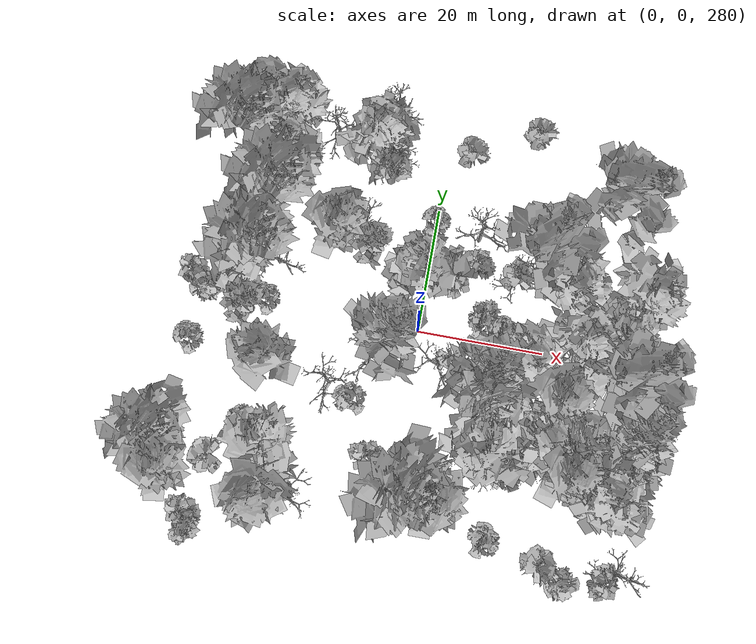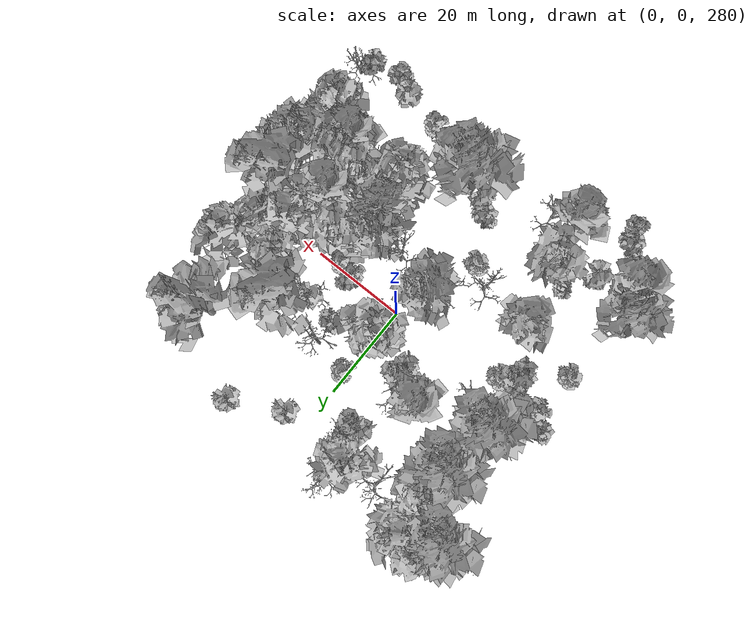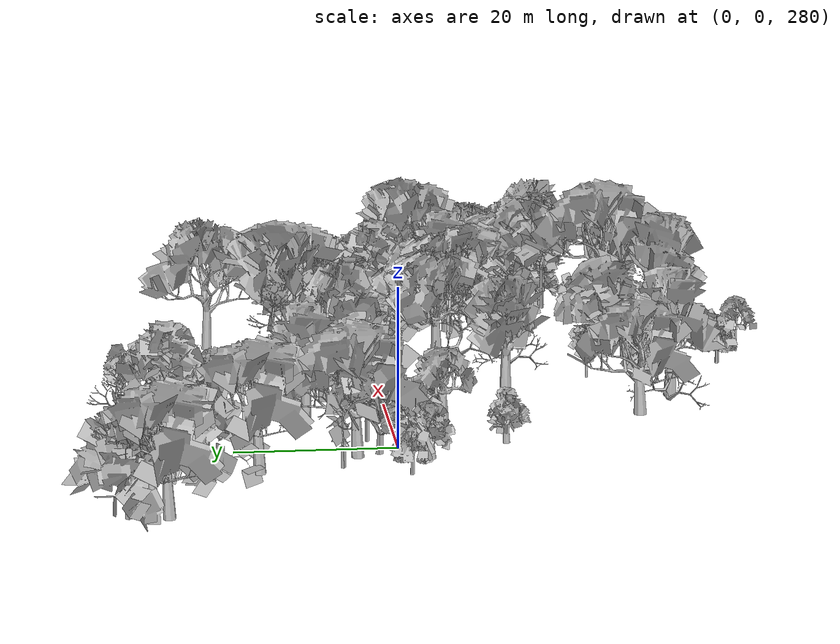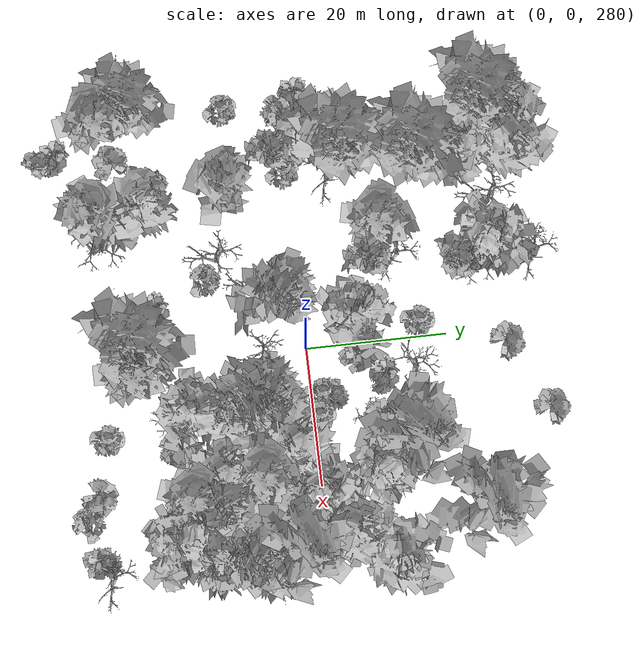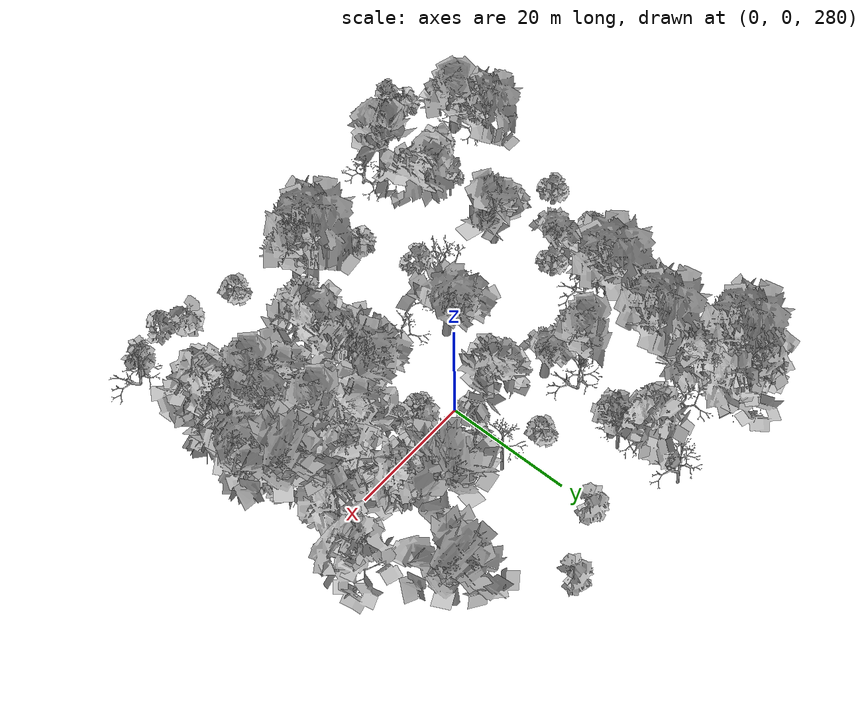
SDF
<sdf version="1.6">
 <world name="default">
  <light name="sun" type="directional">
   <pose>0 0 10 0 -0 0</pose>
   <diffuse>0.8 0.8 0.8 1</diffuse>
   <specular>0.2 0.2 0.2 1</specular>
   <attenuation>
    <range>1000</range>
    <constant>0.9</constant>
    <linear>0.01</linear>
    <quadratic>0.001</quadratic>
   </attenuation>
   <direction>-0.5 0.1 -0.9</direction>
  </light>
  <scene>
   <sky><clouds><speed>12</speed></clouds></sky>
   <ambient>0.4 0.4 0.4 1</ambient>
   <background>0.7 0.7 0.7 1</background>
   <shadows>1</shadows>
  </scene>
  <spherical_coordinates>
   <surface_model>EARTH_WGS84</surface_model>
   <latitude_deg>47.3977</latitude_deg>
   <longitude_deg>8.54559</longitude_deg>
   <elevation>0</elevation>
   <heading_deg>0</heading_deg>
  </spherical_coordinates>
  <physics name="default_physics" default="0" type="ode">
   <ode>
    <solver>
     <type>quick</type>
     <iters>100</iters>
     <sor>1.3</sor>
     <use_dynamic_moi_rescaling>0</use_dynamic_moi_rescaling>
    </solver>
    <constraints>
     <cfm>0</cfm>
     <erp>0.2</erp>
     <contact_max_correcting_vel>100</contact_max_correcting_vel>
     <contact_surface_layer>0.001</contact_surface_layer>
    </constraints>
   </ode>
   <max_step_size>0.002</max_step_size>
   <real_time_factor>1</real_time_factor>
   <real_time_update_rate>500</real_time_update_rate>
  </physics>
  <gravity>0 0 -9.8</gravity>
  <magnetic_field>6e-06 2.3e-05 -4.2e-05</magnetic_field>
  <atmosphere type="adiabatic"/>
  <model name="my_mesh0">
   <pose>20.8063 8.07903 288.471 0 -0 0.445002</pose>
   <static>1</static>
   <link name="body">
    <visual name="visual">
     <geometry><mesh><uri>model://trees/15.dae</uri><scale>1 1 1</scale></mesh></geometry>
    </visual>
    <collision name="collision">
     <geometry><mesh><uri>model://trees/15.dae</uri><scale>1 1 1</scale></mesh></geometry>
    </collision>
   </link>
  </model>
  <model name="my_mesh1">
   <pose>12.1117 -19.312 294.285 0 0 -1.45575</pose>
   <static>1</static>
   <link name="body">
    <visual name="visual">
     <geometry><mesh><uri>model://trees/16.dae</uri><scale>1 1 1</scale></mesh></geometry>
    </visual>
    <collision name="collision">
     <geometry><mesh><uri>model://trees/16.dae</uri><scale>1 1 1</scale></mesh></geometry>
    </collision>
   </link>
  </model>
  <model name="my_mesh2">
   <pose>28.4761 3.03538 289.458 0 0 -0.115288</pose>
   <static>1</static>
   <link name="body">
    <visual name="visual">
     <geometry><mesh><uri>model://trees/12.dae</uri><scale>1 1 1</scale></mesh></geometry>
    </visual>
    <collision name="collision">
     <geometry><mesh><uri>model://trees/12.dae</uri><scale>1 1 1</scale></mesh></geometry>
    </collision>
   </link>
  </model>
  <model name="my_mesh3">
   <pose>18.708 9.09299 288.445 0 0 -1.40842</pose>
   <static>1</static>
   <link name="body">
    <visual name="visual">
     <geometry><mesh><uri>model://trees/2.dae</uri><scale>1 1 1</scale></mesh></geometry>
    </visual>
    <collision name="collision">
     <geometry><mesh><uri>model://trees/2.dae</uri><scale>1 1 1</scale></mesh></geometry>
    </collision>
   </link>
  </model>
  <model name="my_mesh4">
   <pose>9.41999 1.23838 289.77 0 0 -0.620555</pose>
   <static>1</static>
   <link name="body">
    <visual name="visual">
     <geometry><mesh><uri>model://trees/1.dae</uri><scale>1 1 1</scale></mesh></geometry>
    </visual>
    <collision name="collision">
     <geometry><mesh><uri>model://trees/1.dae</uri><scale>1 1 1</scale></mesh></geometry>
    </collision>
   </link>
  </model>
  <model name="my_mesh5">
   <pose>21.1443 -7.71725 291.224 0 0 -0.550652</pose>
   <static>1</static>
   <link name="body">
    <visual name="visual">
     <geometry><mesh><uri>model://trees/11.dae</uri><scale>1 1 1</scale></mesh></geometry>
    </visual>
    <collision name="collision">
     <geometry><mesh><uri>model://trees/11.dae</uri><scale>1 1 1</scale></mesh></geometry>
    </collision>
   </link>
  </model>
  <model name="my_mesh6">
   <pose>24.3516 1.00171 289.25 0 0 -1.35524</pose>
   <static>1</static>
   <link name="body">
    <visual name="visual">
     <geometry><mesh><uri>model://trees/15.dae</uri><scale>1 1 1</scale></mesh></geometry>
    </visual>
    <collision name="collision">
     <geometry><mesh><uri>model://trees/15.dae</uri><scale>1 1 1</scale></mesh></geometry>
    </collision>
   </link>
  </model>
  <model name="my_mesh7">
   <pose>30.9174 -14.6529 292.255 0 0 -1.44857</pose>
   <static>1</static>
   <link name="body">
    <visual name="visual">
     <geometry><mesh><uri>model://trees/1.dae</uri><scale>1 1 1</scale></mesh></geometry>
    </visual>
    <collision name="collision">
     <geometry><mesh><uri>model://trees/1.dae</uri><scale>1 1 1</scale></mesh></geometry>
    </collision>
   </link>
  </model>
  <model name="my_mesh8">
   <pose>32.6044 -30.0269 295.696 0 -0 1.37996</pose>
   <static>1</static>
   <link name="body">
    <visual name="visual">
     <geometry><mesh><uri>model://trees/18.dae</uri><scale>1 1 1</scale></mesh></geometry>
    </visual>
    <collision name="collision">
     <geometry><mesh><uri>model://trees/18.dae</uri><scale>1 1 1</scale></mesh></geometry>
    </collision>
   </link>
  </model>
  <model name="my_mesh9">
   <pose>29.5746 5.54922 288.974 0 0 -1.54508</pose>
   <static>1</static>
   <link name="body">
    <visual name="visual">
     <geometry><mesh><uri>model://trees/0.dae</uri><scale>1 1 1</scale></mesh></geometry>
    </visual>
    <collision name="collision">
     <geometry><mesh><uri>model://trees/0.dae</uri><scale>1 1 1</scale></mesh></geometry>
    </collision>
   </link>
  </model>
  <model name="my_mesh10">
   <pose>12.5589 0.535998 289.757 0 0 -0.53211</pose>
   <static>1</static>
   <link name="body">
    <visual name="visual">
     <geometry><mesh><uri>model://trees/1.dae</uri><scale>1 1 1</scale></mesh></geometry>
    </visual>
    <collision name="collision">
     <geometry><mesh><uri>model://trees/1.dae</uri><scale>1 1 1</scale></mesh></geometry>
    </collision>
   </link>
  </model>
  <model name="my_mesh11">
   <pose>33.2241 -8.57934 291.117 0 0 -0.520191</pose>
   <static>1</static>
   <link name="body">
    <visual name="visual">
     <geometry><mesh><uri>model://trees/13.dae</uri><scale>1 1 1</scale></mesh></geometry>
    </visual>
    <collision name="collision">
     <geometry><mesh><uri>model://trees/13.dae</uri><scale>1 1 1</scale></mesh></geometry>
    </collision>
   </link>
  </model>
  <model name="my_mesh12">
   <pose>21.7997 -30.909 295.75 0 0 -1.52255</pose>
   <static>1</static>
   <link name="body">
    <visual name="visual">
     <geometry><mesh><uri>model://trees/5.dae</uri><scale>1 1 1</scale></mesh></geometry>
    </visual>
    <collision name="collision">
     <geometry><mesh><uri>model://trees/5.dae</uri><scale>1 1 1</scale></mesh></geometry>
    </collision>
   </link>
  </model>
  <model name="my_mesh13">
   <pose>31.8118 -14.5154 292.009 0 0 -1.19133</pose>
   <static>1</static>
   <link name="body">
    <visual name="visual">
     <geometry><mesh><uri>model://trees/13.dae</uri><scale>1 1 1</scale></mesh></geometry>
    </visual>
    <collision name="collision">
     <geometry><mesh><uri>model://trees/13.dae</uri><scale>1 1 1</scale></mesh></geometry>
    </collision>
   </link>
  </model>
  <model name="my_mesh14">
   <pose>16.1017 -4.00409 290.698 0 -0 0.822616</pose>
   <static>1</static>
   <link name="body">
    <visual name="visual">
     <geometry><mesh><uri>model://trees/12.dae</uri><scale>1 1 1</scale></mesh></geometry>
    </visual>
    <collision name="collision">
     <geometry><mesh><uri>model://trees/12.dae</uri><scale>1 1 1</scale></mesh></geometry>
    </collision>
   </link>
  </model>
  <model name="my_mesh15">
   <pose>31.5274 -8.66621 291.149 0 -0 0.917656</pose>
   <static>1</static>
   <link name="body">
    <visual name="visual">
     <geometry><mesh><uri>model://trees/7.dae</uri><scale>1 1 1</scale></mesh></geometry>
    </visual>
    <collision name="collision">
     <geometry><mesh><uri>model://trees/7.dae</uri><scale>1 1 1</scale></mesh></geometry>
    </collision>
   </link>
  </model>
  <model name="my_mesh16">
   <pose>15.7904 -10.4814 291.89 0 0 -1.28272</pose>
   <static>1</static>
   <link name="body">
    <visual name="visual">
     <geometry><mesh><uri>model://trees/19.dae</uri><scale>1 1 1</scale></mesh></geometry>
    </visual>
    <collision name="collision">
     <geometry><mesh><uri>model://trees/19.dae</uri><scale>1 1 1</scale></mesh></geometry>
    </collision>
   </link>
  </model>
  <model name="my_mesh17">
   <pose>-0.894987 -23.3352 296.823 0 -0 1.03166</pose>
   <static>1</static>
   <link name="body">
    <visual name="visual">
     <geometry><mesh><uri>model://trees/5.dae</uri><scale>1 1 1</scale></mesh></geometry>
    </visual>
    <collision name="collision">
     <geometry><mesh><uri>model://trees/5.dae</uri><scale>1 1 1</scale></mesh></geometry>
    </collision>
   </link>
  </model>
  <model name="my_mesh18">
   <pose>27.3117 -22.5075 293.805 0 -0 0.249165</pose>
   <static>1</static>
   <link name="body">
    <visual name="visual">
     <geometry><mesh><uri>model://trees/2.dae</uri><scale>1 1 1</scale></mesh></geometry>
    </visual>
    <collision name="collision">
     <geometry><mesh><uri>model://trees/2.dae</uri><scale>1 1 1</scale></mesh></geometry>
    </collision>
   </link>
  </model>
  <model name="my_mesh19">
   <pose>24.5126 -14.8817 291.827 0 -0 0.475375</pose>
   <static>1</static>
   <link name="body">
    <visual name="visual">
     <geometry><mesh><uri>model://trees/8.dae</uri><scale>1 1 1</scale></mesh></geometry>
    </visual>
    <collision name="collision">
     <geometry><mesh><uri>model://trees/8.dae</uri><scale>1 1 1</scale></mesh></geometry>
    </collision>
   </link>
  </model>
  <model name="my_mesh20">
   <pose>31.001 -6.72934 290.999 0 -0 1.10973</pose>
   <static>1</static>
   <link name="body">
    <visual name="visual">
     <geometry><mesh><uri>model://trees/3.dae</uri><scale>1 1 1</scale></mesh></geometry>
    </visual>
    <collision name="collision">
     <geometry><mesh><uri>model://trees/3.dae</uri><scale>1 1 1</scale></mesh></geometry>
    </collision>
   </link>
  </model>
  <model name="my_mesh21">
   <pose>14.0333 -29.0196 296.132 0 0 -0.725144</pose>
   <static>1</static>
   <link name="body">
    <visual name="visual">
     <geometry><mesh><uri>model://trees/1.dae</uri><scale>1 1 1</scale></mesh></geometry>
    </visual>
    <collision name="collision">
     <geometry><mesh><uri>model://trees/1.dae</uri><scale>1 1 1</scale></mesh></geometry>
    </collision>
   </link>
  </model>
  <model name="my_mesh22">
   <pose>17.6701 -16.9803 293.088 0 0 -1.39473</pose>
   <static>1</static>
   <link name="body">
    <visual name="visual">
     <geometry><mesh><uri>model://trees/2.dae</uri><scale>1 1 1</scale></mesh></geometry>
    </visual>
    <collision name="collision">
     <geometry><mesh><uri>model://trees/2.dae</uri><scale>1 1 1</scale></mesh></geometry>
    </collision>
   </link>
  </model>
  <model name="my_mesh23">
   <pose>25.1874 -6.09612 290.47 0 0 -0.320459</pose>
   <static>1</static>
   <link name="body">
    <visual name="visual">
     <geometry><mesh><uri>model://trees/6.dae</uri><scale>1 1 1</scale></mesh></geometry>
    </visual>
    <collision name="collision">
     <geometry><mesh><uri>model://trees/6.dae</uri><scale>1 1 1</scale></mesh></geometry>
    </collision>
   </link>
  </model>
  <model name="my_mesh24">
   <pose>10.8389 -10.3222 292.921 0 0 -1.09344</pose>
   <static>1</static>
   <link name="body">
    <visual name="visual">
     <geometry><mesh><uri>model://trees/8.dae</uri><scale>1 1 1</scale></mesh></geometry>
    </visual>
    <collision name="collision">
     <geometry><mesh><uri>model://trees/8.dae</uri><scale>1 1 1</scale></mesh></geometry>
    </collision>
   </link>
  </model>
  <model name="my_mesh25">
   <pose>16.0202 -19.8481 293.751 0 0 -1.15981</pose>
   <static>1</static>
   <link name="body">
    <visual name="visual">
     <geometry><mesh><uri>model://trees/0.dae</uri><scale>1 1 1</scale></mesh></geometry>
    </visual>
    <collision name="collision">
     <geometry><mesh><uri>model://trees/0.dae</uri><scale>1 1 1</scale></mesh></geometry>
    </collision>
   </link>
  </model>
  <model name="my_mesh26">
   <pose>32.3918 -9.22282 291.255 0 -0 0.407303</pose>
   <static>1</static>
   <link name="body">
    <visual name="visual">
     <geometry><mesh><uri>model://trees/6.dae</uri><scale>1 1 1</scale></mesh></geometry>
    </visual>
    <collision name="collision">
     <geometry><mesh><uri>model://trees/6.dae</uri><scale>1 1 1</scale></mesh></geometry>
    </collision>
   </link>
  </model>
  <model name="my_mesh27">
   <pose>28.3484 -19.161 293.142 0 0 -1.47955</pose>
   <static>1</static>
   <link name="body">
    <visual name="visual">
     <geometry><mesh><uri>model://trees/8.dae</uri><scale>1 1 1</scale></mesh></geometry>
    </visual>
    <collision name="collision">
     <geometry><mesh><uri>model://trees/8.dae</uri><scale>1 1 1</scale></mesh></geometry>
    </collision>
   </link>
  </model>
  <model name="my_mesh28">
   <pose>25.1324 -32.8108 295.833 0 -0 1.37274</pose>
   <static>1</static>
   <link name="body">
    <visual name="visual">
     <geometry><mesh><uri>model://trees/0.dae</uri><scale>1 1 1</scale></mesh></geometry>
    </visual>
    <collision name="collision">
     <geometry><mesh><uri>model://trees/0.dae</uri><scale>1 1 1</scale></mesh></geometry>
    </collision>
   </link>
  </model>
  <model name="my_mesh29">
   <pose>31.3949 -4.27127 290.542 0 -0 0.686679</pose>
   <static>1</static>
   <link name="body">
    <visual name="visual">
     <geometry><mesh><uri>model://trees/10.dae</uri><scale>1 1 1</scale></mesh></geometry>
    </visual>
    <collision name="collision">
     <geometry><mesh><uri>model://trees/10.dae</uri><scale>1 1 1</scale></mesh></geometry>
    </collision>
   </link>
  </model>
  <model name="my_mesh30">
   <pose>33.2624 -11.6238 291.68 0 -0 0.913694</pose>
   <static>1</static>
   <link name="body">
    <visual name="visual">
     <geometry><mesh><uri>model://trees/8.dae</uri><scale>1 1 1</scale></mesh></geometry>
    </visual>
    <collision name="collision">
     <geometry><mesh><uri>model://trees/8.dae</uri><scale>1 1 1</scale></mesh></geometry>
    </collision>
   </link>
  </model>
  <model name="my_mesh31">
   <pose>-5.83259 -6.56922 293.065 0 0 -0.260248</pose>
   <static>1</static>
   <link name="body">
    <visual name="visual">
     <geometry><mesh><uri>model://trees/19.dae</uri><scale>1 1 1</scale></mesh></geometry>
    </visual>
    <collision name="collision">
     <geometry><mesh><uri>model://trees/19.dae</uri><scale>1 1 1</scale></mesh></geometry>
    </collision>
   </link>
  </model>
  <model name="my_mesh32">
   <pose>26.7089 -2.7614 290.294 0 -0 1.30739</pose>
   <static>1</static>
   <link name="body">
    <visual name="visual">
     <geometry><mesh><uri>model://trees/13.dae</uri><scale>1 1 1</scale></mesh></geometry>
    </visual>
    <collision name="collision">
     <geometry><mesh><uri>model://trees/13.dae</uri><scale>1 1 1</scale></mesh></geometry>
    </collision>
   </link>
  </model>
  <model name="my_mesh33">
   <pose>-32.5218 27.4969 282.625 0 0 -0.562097</pose>
   <static>1</static>
   <link name="body">
    <visual name="visual">
     <geometry><mesh><uri>model://trees/9.dae</uri><scale>1 1 1</scale></mesh></geometry>
    </visual>
    <collision name="collision">
     <geometry><mesh><uri>model://trees/9.dae</uri><scale>1 1 1</scale></mesh></geometry>
    </collision>
   </link>
  </model>
  <model name="my_mesh34">
   <pose>-24.8462 23.2175 284.416 0 -0 1.04685</pose>
   <static>1</static>
   <link name="body">
    <visual name="visual">
     <geometry><mesh><uri>model://trees/12.dae</uri><scale>1 1 1</scale></mesh></geometry>
    </visual>
    <collision name="collision">
     <geometry><mesh><uri>model://trees/12.dae</uri><scale>1 1 1</scale></mesh></geometry>
    </collision>
   </link>
  </model>
  <model name="my_mesh35">
   <pose>13.6358 33.2331 284.376 0 -0 0.008972</pose>
   <static>1</static>
   <link name="body">
    <visual name="visual">
     <geometry><mesh><uri>model://trees/5.dae</uri><scale>1 1 1</scale></mesh></geometry>
    </visual>
    <collision name="collision">
     <geometry><mesh><uri>model://trees/5.dae</uri><scale>1 1 1</scale></mesh></geometry>
    </collision>
   </link>
  </model>
  <model name="my_mesh36">
   <pose>-28.7734 2.34885 288.024 0 -0 0.194529</pose>
   <static>1</static>
   <link name="body">
    <visual name="visual">
     <geometry><mesh><uri>model://trees/6.dae</uri><scale>1 1 1</scale></mesh></geometry>
    </visual>
    <collision name="collision">
     <geometry><mesh><uri>model://trees/6.dae</uri><scale>1 1 1</scale></mesh></geometry>
    </collision>
   </link>
  </model>
  <model name="my_mesh37">
   <pose>-31.0786 -26.2478 294.34 0 0 -0.03751</pose>
   <static>1</static>
   <link name="body">
    <visual name="visual">
     <geometry><mesh><uri>model://trees/11.dae</uri><scale>1 1 1</scale></mesh></geometry>
    </visual>
    <collision name="collision">
     <geometry><mesh><uri>model://trees/11.dae</uri><scale>1 1 1</scale></mesh></geometry>
    </collision>
   </link>
  </model>
  <model name="my_mesh38">
   <pose>-27.2691 4.75439 287.556 0 0 -0.150615</pose>
   <static>1</static>
   <link name="body">
    <visual name="visual">
     <geometry><mesh><uri>model://trees/13.dae</uri><scale>1 1 1</scale></mesh></geometry>
    </visual>
    <collision name="collision">
     <geometry><mesh><uri>model://trees/13.dae</uri><scale>1 1 1</scale></mesh></geometry>
    </collision>
   </link>
  </model>
  <model name="my_mesh39">
   <pose>-28.7709 8.77153 286.57 0 0 -1.45573</pose>
   <static>1</static>
   <link name="body">
    <visual name="visual">
     <geometry><mesh><uri>model://trees/16.dae</uri><scale>1 1 1</scale></mesh></geometry>
    </visual>
    <collision name="collision">
     <geometry><mesh><uri>model://trees/16.dae</uri><scale>1 1 1</scale></mesh></geometry>
    </collision>
   </link>
  </model>
  <model name="my_mesh40">
   <pose>-8.66043 9.53047 288.665 0 -0 0.646439</pose>
   <static>1</static>
   <link name="body">
    <visual name="visual">
     <geometry><mesh><uri>model://trees/7.dae</uri><scale>1 1 1</scale></mesh></geometry>
    </visual>
    <collision name="collision">
     <geometry><mesh><uri>model://trees/7.dae</uri><scale>1 1 1</scale></mesh></geometry>
    </collision>
   </link>
  </model>
  <model name="my_mesh41">
   <pose>-30.9881 31.8288 282.295 0 0 -1.48958</pose>
   <static>1</static>
   <link name="body">
    <visual name="visual">
     <geometry><mesh><uri>model://trees/13.dae</uri><scale>1 1 1</scale></mesh></geometry>
    </visual>
    <collision name="collision">
     <geometry><mesh><uri>model://trees/13.dae</uri><scale>1 1 1</scale></mesh></geometry>
    </collision>
   </link>
  </model>
  <model name="my_mesh42">
   <pose>-11.0858 -11.4559 293.104 0 0 -0.016769</pose>
   <static>1</static>
   <link name="body">
    <visual name="visual">
     <geometry><mesh><uri>model://trees/18.dae</uri><scale>1 1 1</scale></mesh></geometry>
    </visual>
    <collision name="collision">
     <geometry><mesh><uri>model://trees/18.dae</uri><scale>1 1 1</scale></mesh></geometry>
    </collision>
   </link>
  </model>
  <model name="my_mesh43">
   <pose>-10.7099 28.1124 284.486 0 0 -0.870695</pose>
   <static>1</static>
   <link name="body">
    <visual name="visual">
     <geometry><mesh><uri>model://trees/15.dae</uri><scale>1 1 1</scale></mesh></geometry>
    </visual>
    <collision name="collision">
     <geometry><mesh><uri>model://trees/15.dae</uri><scale>1 1 1</scale></mesh></geometry>
    </collision>
   </link>
  </model>
  <model name="my_mesh44">
   <pose>-25.2558 -2.4824 289.43 0 -0 0.560252</pose>
   <static>1</static>
   <link name="body">
    <visual name="visual">
     <geometry><mesh><uri>model://trees/7.dae</uri><scale>1 1 1</scale></mesh></geometry>
    </visual>
    <collision name="collision">
     <geometry><mesh><uri>model://trees/7.dae</uri><scale>1 1 1</scale></mesh></geometry>
    </collision>
   </link>
  </model>
  <model name="my_mesh45">
   <pose>-31.829 -25.9019 294.183 0 0 -0.592964</pose>
   <static>1</static>
   <link name="body">
    <visual name="visual">
     <geometry><mesh><uri>model://trees/18.dae</uri><scale>1 1 1</scale></mesh></geometry>
    </visual>
    <collision name="collision">
     <geometry><mesh><uri>model://trees/18.dae</uri><scale>1 1 1</scale></mesh></geometry>
    </collision>
   </link>
  </model>
  <model name="my_mesh46">
   <pose>-3.21603 -4.20344 292.46 0 -0 0.943729</pose>
   <static>1</static>
   <link name="body">
    <visual name="visual">
     <geometry><mesh><uri>model://trees/8.dae</uri><scale>1 1 1</scale></mesh></geometry>
    </visual>
    <collision name="collision">
     <geometry><mesh><uri>model://trees/8.dae</uri><scale>1 1 1</scale></mesh></geometry>
    </collision>
   </link>
  </model>
  <model name="my_mesh47">
   <pose>-8.35732 22.1031 285.704 0 0 -0.474752</pose>
   <static>1</static>
   <link name="body">
    <visual name="visual">
     <geometry><mesh><uri>model://trees/7.dae</uri><scale>1 1 1</scale></mesh></geometry>
    </visual>
    <collision name="collision">
     <geometry><mesh><uri>model://trees/7.dae</uri><scale>1 1 1</scale></mesh></geometry>
    </collision>
   </link>
  </model>
  <model name="my_mesh48">
   <pose>-17.4207 27.9137 284.295 0 0 -0.046152</pose>
   <static>1</static>
   <link name="body">
    <visual name="visual">
     <geometry><mesh><uri>model://trees/17.dae</uri><scale>1 1 1</scale></mesh></geometry>
    </visual>
    <collision name="collision">
     <geometry><mesh><uri>model://trees/17.dae</uri><scale>1 1 1</scale></mesh></geometry>
    </collision>
   </link>
  </model>
  <model name="my_mesh49">
   <pose>17.2876 12.7668 287.847 0 -0 1.20002</pose>
   <static>1</static>
   <link name="body">
    <visual name="visual">
     <geometry><mesh><uri>model://trees/10.dae</uri><scale>1 1 1</scale></mesh></geometry>
    </visual>
    <collision name="collision">
     <geometry><mesh><uri>model://trees/10.dae</uri><scale>1 1 1</scale></mesh></geometry>
    </collision>
   </link>
  </model>
  <model name="my_mesh50">
   <pose>-32.0704 -0.500768 288.326 0 0 -1.50393</pose>
   <static>1</static>
   <link name="body">
    <visual name="visual">
     <geometry><mesh><uri>model://trees/0.dae</uri><scale>1 1 1</scale></mesh></geometry>
    </visual>
    <collision name="collision">
     <geometry><mesh><uri>model://trees/0.dae</uri><scale>1 1 1</scale></mesh></geometry>
    </collision>
   </link>
  </model>
  <model name="my_mesh51">
   <pose>-26.7556 -32.3917 296.7 0 0 -0.833346</pose>
   <static>1</static>
   <link name="body">
    <visual name="visual">
     <geometry><mesh><uri>model://trees/4.dae</uri><scale>1 1 1</scale></mesh></geometry>
    </visual>
    <collision name="collision">
     <geometry><mesh><uri>model://trees/4.dae</uri><scale>1 1 1</scale></mesh></geometry>
    </collision>
   </link>
  </model>
  <model name="my_mesh52">
   <pose>-34.6529 1.91265 287.442 0 0 -1.035</pose>
   <static>1</static>
   <link name="body">
    <visual name="visual">
     <geometry><mesh><uri>model://trees/4.dae</uri><scale>1 1 1</scale></mesh></geometry>
    </visual>
    <collision name="collision">
     <geometry><mesh><uri>model://trees/4.dae</uri><scale>1 1 1</scale></mesh></geometry>
    </collision>
   </link>
  </model>
  <model name="my_mesh53">
   <pose>-30.7135 29.1881 282.845 0 0 -0.298796</pose>
   <static>1</static>
   <link name="body">
    <visual name="visual">
     <geometry><mesh><uri>model://trees/8.dae</uri><scale>1 1 1</scale></mesh></geometry>
    </visual>
    <collision name="collision">
     <geometry><mesh><uri>model://trees/8.dae</uri><scale>1 1 1</scale></mesh></geometry>
    </collision>
   </link>
  </model>
  <model name="my_mesh54">
   <pose>19.7701 -14.6795 292.562 0 -0 0.757205</pose>
   <static>1</static>
   <link name="body">
    <visual name="visual">
     <geometry><mesh><uri>model://trees/12.dae</uri><scale>1 1 1</scale></mesh></geometry>
    </visual>
    <collision name="collision">
     <geometry><mesh><uri>model://trees/12.dae</uri><scale>1 1 1</scale></mesh></geometry>
    </collision>
   </link>
  </model>
  <model name="my_mesh55">
   <pose>-9.27438 33.6008 283.584 0 -0 1.2289</pose>
   <static>1</static>
   <link name="body">
    <visual name="visual">
     <geometry><mesh><uri>model://trees/17.dae</uri><scale>1 1 1</scale></mesh></geometry>
    </visual>
    <collision name="collision">
     <geometry><mesh><uri>model://trees/17.dae</uri><scale>1 1 1</scale></mesh></geometry>
    </collision>
   </link>
  </model>
  <model name="my_mesh56">
   <pose>-26.6286 7.04772 287.062 0 0 -0.130337</pose>
   <static>1</static>
   <link name="body">
    <visual name="visual">
     <geometry><mesh><uri>model://trees/9.dae</uri><scale>1 1 1</scale></mesh></geometry>
    </visual>
    <collision name="collision">
     <geometry><mesh><uri>model://trees/9.dae</uri><scale>1 1 1</scale></mesh></geometry>
    </collision>
   </link>
  </model>
  <model name="my_mesh57">
   <pose>-3.64703 4.93612 289.512 0 0 -0.008549</pose>
   <static>1</static>
   <link name="body">
    <visual name="visual">
     <geometry><mesh><uri>model://trees/2.dae</uri><scale>1 1 1</scale></mesh></geometry>
    </visual>
    <collision name="collision">
     <geometry><mesh><uri>model://trees/2.dae</uri><scale>1 1 1</scale></mesh></geometry>
    </collision>
   </link>
  </model>
  <model name="my_mesh58">
   <pose>23.6816 -17.6831 292.428 0 0 -0.543715</pose>
   <static>1</static>
   <link name="body">
    <visual name="visual">
     <geometry><mesh><uri>model://trees/11.dae</uri><scale>1 1 1</scale></mesh></geometry>
    </visual>
    <collision name="collision">
     <geometry><mesh><uri>model://trees/11.dae</uri><scale>1 1 1</scale></mesh></geometry>
    </collision>
   </link>
  </model>
  <model name="my_mesh59">
   <pose>3.64033 28.1074 284.727 0 0 -0.371813</pose>
   <static>1</static>
   <link name="body">
    <visual name="visual">
     <geometry><mesh><uri>model://trees/5.dae</uri><scale>1 1 1</scale></mesh></geometry>
    </visual>
    <collision name="collision">
     <geometry><mesh><uri>model://trees/5.dae</uri><scale>1 1 1</scale></mesh></geometry>
    </collision>
   </link>
  </model>
  <model name="my_mesh60">
   <pose>-25.4764 17.6667 285.158 0 0 -0.587343</pose>
   <static>1</static>
   <link name="body">
    <visual name="visual">
     <geometry><mesh><uri>model://trees/9.dae</uri><scale>1 1 1</scale></mesh></geometry>
    </visual>
    <collision name="collision">
     <geometry><mesh><uri>model://trees/9.dae</uri><scale>1 1 1</scale></mesh></geometry>
    </collision>
   </link>
  </model>
  <model name="my_mesh61">
   <pose>-10.6518 14.1713 287.423 0 -0 1.00379</pose>
   <static>1</static>
   <link name="body">
    <visual name="visual">
     <geometry><mesh><uri>model://trees/18.dae</uri><scale>1 1 1</scale></mesh></geometry>
    </visual>
    <collision name="collision">
     <geometry><mesh><uri>model://trees/18.dae</uri><scale>1 1 1</scale></mesh></geometry>
    </collision>
   </link>
  </model>
  <model name="my_mesh62">
   <pose>-25.9468 31.5745 282.911 0 0 -0.654048</pose>
   <static>1</static>
   <link name="body">
    <visual name="visual">
     <geometry><mesh><uri>model://trees/12.dae</uri><scale>1 1 1</scale></mesh></geometry>
    </visual>
    <collision name="collision">
     <geometry><mesh><uri>model://trees/12.dae</uri><scale>1 1 1</scale></mesh></geometry>
    </collision>
   </link>
  </model>
  <model name="my_mesh63">
   <pose>-30.8552 -0.063687 288.267 0 -0 1.07412</pose>
   <static>1</static>
   <link name="body">
    <visual name="visual">
     <geometry><mesh><uri>model://trees/0.dae</uri><scale>1 1 1</scale></mesh></geometry>
    </visual>
    <collision name="collision">
     <geometry><mesh><uri>model://trees/0.dae</uri><scale>1 1 1</scale></mesh></geometry>
    </collision>
   </link>
  </model>
  <model name="my_mesh64">
   <pose>-20.7551 -9.94239 291.533 0 -0 1.16153</pose>
   <static>1</static>
   <link name="body">
    <visual name="visual">
     <geometry><mesh><uri>model://trees/11.dae</uri><scale>1 1 1</scale></mesh></geometry>
    </visual>
    <collision name="collision">
     <geometry><mesh><uri>model://trees/11.dae</uri><scale>1 1 1</scale></mesh></geometry>
    </collision>
   </link>
  </model>
  <model name="my_mesh65">
   <pose>-25.4256 -24.6074 294.937 0 -0 0.953819</pose>
   <static>1</static>
   <link name="body">
    <visual name="visual">
     <geometry><mesh><uri>model://trees/5.dae</uri><scale>1 1 1</scale></mesh></geometry>
    </visual>
    <collision name="collision">
     <geometry><mesh><uri>model://trees/5.dae</uri><scale>1 1 1</scale></mesh></geometry>
    </collision>
   </link>
  </model>
  <model name="my_mesh66">
   <pose>12.2202 -17.0107 293.862 0 -0 0.589776</pose>
   <static>1</static>
   <link name="body">
    <visual name="visual">
     <geometry><mesh><uri>model://trees/14.dae</uri><scale>1 1 1</scale></mesh></geometry>
    </visual>
    <collision name="collision">
     <geometry><mesh><uri>model://trees/14.dae</uri><scale>1 1 1</scale></mesh></geometry>
    </collision>
   </link>
  </model>
  <model name="my_mesh67">
   <pose>-21.5446 -18.9208 294.035 0 -0 1.50483</pose>
   <static>1</static>
   <link name="body">
    <visual name="visual">
     <geometry><mesh><uri>model://trees/6.dae</uri><scale>1 1 1</scale></mesh></geometry>
    </visual>
    <collision name="collision">
     <geometry><mesh><uri>model://trees/6.dae</uri><scale>1 1 1</scale></mesh></geometry>
    </collision>
   </link>
  </model>
  <model name="my_mesh68">
   <pose>5.90744 -24.4115 296.689 0 0 -0.204642</pose>
   <static>1</static>
   <link name="body">
    <visual name="visual">
     <geometry><mesh><uri>model://trees/11.dae</uri><scale>1 1 1</scale></mesh></geometry>
    </visual>
    <collision name="collision">
     <geometry><mesh><uri>model://trees/11.dae</uri><scale>1 1 1</scale></mesh></geometry>
    </collision>
   </link>
  </model>
  <model name="my_mesh69">
   <pose>11.2976 -7.18743 291.81 0 -0 1.19481</pose>
   <static>1</static>
   <link name="body">
    <visual name="visual">
     <geometry><mesh><uri>model://trees/8.dae</uri><scale>1 1 1</scale></mesh></geometry>
    </visual>
    <collision name="collision">
     <geometry><mesh><uri>model://trees/8.dae</uri><scale>1 1 1</scale></mesh></geometry>
    </collision>
   </link>
  </model>
  <model name="my_mesh70">
   <pose>16.1801 11.4846 288.053 0 -0 1.28385</pose>
   <static>1</static>
   <link name="body">
    <visual name="visual">
     <geometry><mesh><uri>model://trees/16.dae</uri><scale>1 1 1</scale></mesh></geometry>
    </visual>
    <collision name="collision">
     <geometry><mesh><uri>model://trees/16.dae</uri><scale>1 1 1</scale></mesh></geometry>
    </collision>
   </link>
  </model>
  <model name="my_mesh71">
   <pose>30.7373 -31.6484 295.933 0 -0 0.761981</pose>
   <static>1</static>
   <link name="body">
    <visual name="visual">
     <geometry><mesh><uri>model://trees/4.dae</uri><scale>1 1 1</scale></mesh></geometry>
    </visual>
    <collision name="collision">
     <geometry><mesh><uri>model://trees/4.dae</uri><scale>1 1 1</scale></mesh></geometry>
    </collision>
   </link>
  </model>
  <model name="my_mesh72">
   <pose>-32.6354 -8.36703 290.015 0 0 -0.136445</pose>
   <static>1</static>
   <link name="body">
    <visual name="visual">
     <geometry><mesh><uri>model://trees/1.dae</uri><scale>1 1 1</scale></mesh></geometry>
    </visual>
    <collision name="collision">
     <geometry><mesh><uri>model://trees/1.dae</uri><scale>1 1 1</scale></mesh></geometry>
    </collision>
   </link>
  </model>
  <model name="my_mesh73">
   <pose>6.84192 14.5128 287.266 0 -0 1.35551</pose>
   <static>1</static>
   <link name="body">
    <visual name="visual">
     <geometry><mesh><uri>model://trees/16.dae</uri><scale>1 1 1</scale></mesh></geometry>
    </visual>
    <collision name="collision">
     <geometry><mesh><uri>model://trees/16.dae</uri><scale>1 1 1</scale></mesh></geometry>
    </collision>
   </link>
  </model>
  <model name="my_mesh74">
   <pose>-0.058888 7.21009 288.813 0 -0 1.47011</pose>
   <static>1</static>
   <link name="body">
    <visual name="visual">
     <geometry><mesh><uri>model://trees/14.dae</uri><scale>1 1 1</scale></mesh></geometry>
    </visual>
    <collision name="collision">
     <geometry><mesh><uri>model://trees/14.dae</uri><scale>1 1 1</scale></mesh></geometry>
    </collision>
   </link>
  </model>
  <model name="my_mesh75">
   <pose>-0.07311 15.8384 287.103 0 0 -0.767739</pose>
   <static>1</static>
   <link name="body">
    <visual name="visual">
     <geometry><mesh><uri>model://trees/0.dae</uri><scale>1 1 1</scale></mesh></geometry>
    </visual>
    <collision name="collision">
     <geometry><mesh><uri>model://trees/0.dae</uri><scale>1 1 1</scale></mesh></geometry>
    </collision>
   </link>
  </model>
  <model name="my_mesh76">
   <pose>-22.8966 -0.586727 289.11 0 0 -0.105197</pose>
   <static>1</static>
   <link name="body">
    <visual name="visual">
     <geometry><mesh><uri>model://trees/0.dae</uri><scale>1 1 1</scale></mesh></geometry>
    </visual>
    <collision name="collision">
     <geometry><mesh><uri>model://trees/0.dae</uri><scale>1 1 1</scale></mesh></geometry>
    </collision>
   </link>
  </model>
  <model name="my_mesh77">
   <pose>13.788 9.03048 288.358 0 -0 1.53795</pose>
   <static>1</static>
   <link name="body">
    <visual name="visual">
     <geometry><mesh><uri>model://trees/19.dae</uri><scale>1 1 1</scale></mesh></geometry>
    </visual>
    <collision name="collision">
     <geometry><mesh><uri>model://trees/19.dae</uri><scale>1 1 1</scale></mesh></geometry>
    </collision>
   </link>
  </model>
  <model name="my_mesh78">
   <pose>32.754 10.1173 288.219 0 0 -1.26738</pose>
   <static>1</static>
   <link name="body">
    <visual name="visual">
     <geometry><mesh><uri>model://trees/12.dae</uri><scale>1 1 1</scale></mesh></geometry>
    </visual>
    <collision name="collision">
     <geometry><mesh><uri>model://trees/12.dae</uri><scale>1 1 1</scale></mesh></geometry>
    </collision>
   </link>
  </model>
  <model name="my_mesh79">
   <pose>-25.4473 -34.8039 297.681 0 -0 0.013953</pose>
   <static>1</static>
   <link name="body">
    <visual name="visual">
     <geometry><mesh><uri>model://trees/6.dae</uri><scale>1 1 1</scale></mesh></geometry>
    </visual>
    <collision name="collision">
     <geometry><mesh><uri>model://trees/6.dae</uri><scale>1 1 1</scale></mesh></geometry>
    </collision>
   </link>
  </model>
  <model name="my_mesh80">
   <pose>-17.677 -21.5898 295.375 0 -0 0.48039</pose>
   <static>1</static>
   <link name="body">
    <visual name="visual">
     <geometry><mesh><uri>model://trees/13.dae</uri><scale>1 1 1</scale></mesh></geometry>
    </visual>
    <collision name="collision">
     <geometry><mesh><uri>model://trees/13.dae</uri><scale>1 1 1</scale></mesh></geometry>
    </collision>
   </link>
  </model>
  <model name="my_mesh81">
   <pose>7.20123 10.2399 288.037 0 0 -0.753507</pose>
   <static>1</static>
   <link name="body">
    <visual name="visual">
     <geometry><mesh><uri>model://trees/4.dae</uri><scale>1 1 1</scale></mesh></geometry>
    </visual>
    <collision name="collision">
     <geometry><mesh><uri>model://trees/4.dae</uri><scale>1 1 1</scale></mesh></geometry>
    </collision>
   </link>
  </model>
  <model name="my_mesh82">
   <pose>-22.5825 5.68806 287.66 0 -0 1.34579</pose>
   <static>1</static>
   <link name="body">
    <visual name="visual">
     <geometry><mesh><uri>model://trees/17.dae</uri><scale>1 1 1</scale></mesh></geometry>
    </visual>
    <collision name="collision">
     <geometry><mesh><uri>model://trees/17.dae</uri><scale>1 1 1</scale></mesh></geometry>
    </collision>
   </link>
  </model>
  <model name="my_mesh83">
   <pose>-12.855 -28.1497 298.016 0 0 -0.732046</pose>
   <static>1</static>
   <link name="body">
    <visual name="visual">
     <geometry><mesh><uri>model://trees/18.dae</uri><scale>1 1 1</scale></mesh></geometry>
    </visual>
    <collision name="collision">
     <geometry><mesh><uri>model://trees/18.dae</uri><scale>1 1 1</scale></mesh></geometry>
    </collision>
   </link>
  </model>
  <model name="my_mesh84">
   <pose>-33.8611 -22.5181 293.138 0 0 -0.442104</pose>
   <static>1</static>
   <link name="body">
    <visual name="visual">
     <geometry><mesh><uri>model://trees/8.dae</uri><scale>1 1 1</scale></mesh></geometry>
    </visual>
    <collision name="collision">
     <geometry><mesh><uri>model://trees/8.dae</uri><scale>1 1 1</scale></mesh></geometry>
    </collision>
   </link>
  </model>
  <model name="my_mesh85">
   <pose>1.89627 -24.9517 297.044 0 0 -0.264122</pose>
   <static>1</static>
   <link name="body">
    <visual name="visual">
     <geometry><mesh><uri>model://trees/9.dae</uri><scale>1 1 1</scale></mesh></geometry>
    </visual>
    <collision name="collision">
     <geometry><mesh><uri>model://trees/9.dae</uri><scale>1 1 1</scale></mesh></geometry>
    </collision>
   </link>
  </model>
  <model name="my_mesh86">
   <pose>23.7532 -6.62809 290.697 0 -0 0.086961</pose>
   <static>1</static>
   <link name="body">
    <visual name="visual">
     <geometry><mesh><uri>model://trees/5.dae</uri><scale>1 1 1</scale></mesh></geometry>
    </visual>
    <collision name="collision">
     <geometry><mesh><uri>model://trees/5.dae</uri><scale>1 1 1</scale></mesh></geometry>
    </collision>
   </link>
  </model>
  <model name="my_mesh87">
   <pose>30.0717 -16.3548 292.685 0 -0 1.392</pose>
   <static>1</static>
   <link name="body">
    <visual name="visual">
     <geometry><mesh><uri>model://trees/4.dae</uri><scale>1 1 1</scale></mesh></geometry>
    </visual>
    <collision name="collision">
     <geometry><mesh><uri>model://trees/4.dae</uri><scale>1 1 1</scale></mesh></geometry>
    </collision>
   </link>
  </model>
  <model name="my_mesh88">
   <pose>29.2431 -20.8088 293.393 0 -0 1.18059</pose>
   <static>1</static>
   <link name="body">
    <visual name="visual">
     <geometry><mesh><uri>model://trees/15.dae</uri><scale>1 1 1</scale></mesh></geometry>
    </visual>
    <collision name="collision">
     <geometry><mesh><uri>model://trees/15.dae</uri><scale>1 1 1</scale></mesh></geometry>
    </collision>
   </link>
  </model>
  <model name="my_mesh89">
   <pose>-16.9976 -28.0092 297.57 0 0 -1.36558</pose>
   <static>1</static>
   <link name="body">
    <visual name="visual">
     <geometry><mesh><uri>model://trees/11.dae</uri><scale>1 1 1</scale></mesh></geometry>
    </visual>
    <collision name="collision">
     <geometry><mesh><uri>model://trees/11.dae</uri><scale>1 1 1</scale></mesh></geometry>
    </collision>
   </link>
  </model>
  <model name="my_mesh90">
   <pose>-3.56945 -20.7217 296.124 0 0 -0.551136</pose>
   <static>1</static>
   <link name="body">
    <visual name="visual">
     <geometry><mesh><uri>model://trees/4.dae</uri><scale>1 1 1</scale></mesh></geometry>
    </visual>
    <collision name="collision">
     <geometry><mesh><uri>model://trees/4.dae</uri><scale>1 1 1</scale></mesh></geometry>
    </collision>
   </link>
  </model>
  <model name="my_mesh91">
   <pose>13.4193 9.06686 288.358 0 0 -0.740972</pose>
   <static>1</static>
   <link name="body">
    <visual name="visual">
     <geometry><mesh><uri>model://trees/5.dae</uri><scale>1 1 1</scale></mesh></geometry>
    </visual>
    <collision name="collision">
     <geometry><mesh><uri>model://trees/5.dae</uri><scale>1 1 1</scale></mesh></geometry>
    </collision>
   </link>
  </model>
  <model name="my_mesh92">
   <pose>4.18941 6.79088 288.724 0 -0 1.19358</pose>
   <static>1</static>
   <link name="body">
    <visual name="visual">
     <geometry><mesh><uri>model://trees/4.dae</uri><scale>1 1 1</scale></mesh></geometry>
    </visual>
    <collision name="collision">
     <geometry><mesh><uri>model://trees/4.dae</uri><scale>1 1 1</scale></mesh></geometry>
    </collision>
   </link>
  </model>
  <model name="my_mesh93">
   <pose>26.9583 22.7636 286.386 0 -0 0.352145</pose>
   <static>1</static>
   <link name="body">
    <visual name="visual">
     <geometry><mesh><uri>model://trees/10.dae</uri><scale>1 1 1</scale></mesh></geometry>
    </visual>
    <collision name="collision">
     <geometry><mesh><uri>model://trees/10.dae</uri><scale>1 1 1</scale></mesh></geometry>
    </collision>
   </link>
  </model>
  <model name="my_mesh94">
   <pose>9.29101 2.21413 289.612 0 -0 0.613336</pose>
   <static>1</static>
   <link name="body">
    <visual name="visual">
     <geometry><mesh><uri>model://trees/4.dae</uri><scale>1 1 1</scale></mesh></geometry>
    </visual>
    <collision name="collision">
     <geometry><mesh><uri>model://trees/4.dae</uri><scale>1 1 1</scale></mesh></geometry>
    </collision>
   </link>
  </model>
  <model name="my_mesh95">
   <pose>4.0398 -6.46797 292.683 0 -0 0.547602</pose>
   <static>1</static>
   <link name="body">
    <visual name="visual">
     <geometry><mesh><uri>model://trees/17.dae</uri><scale>1 1 1</scale></mesh></geometry>
    </visual>
    <collision name="collision">
     <geometry><mesh><uri>model://trees/17.dae</uri><scale>1 1 1</scale></mesh></geometry>
    </collision>
   </link>
  </model>
  <model name="my_mesh96">
   <pose>-7.41113 24.0324 285.261 0 0 -0.713833</pose>
   <static>1</static>
   <link name="body">
    <visual name="visual">
     <geometry><mesh><uri>model://trees/17.dae</uri><scale>1 1 1</scale></mesh></geometry>
    </visual>
    <collision name="collision">
     <geometry><mesh><uri>model://trees/17.dae</uri><scale>1 1 1</scale></mesh></geometry>
    </collision>
   </link>
  </model>
  <model name="my_mesh97">
   <pose>-7.53777 -13.2716 294.311 0 -0 0.487337</pose>
   <static>1</static>
   <link name="body">
    <visual name="visual">
     <geometry><mesh><uri>model://trees/1.dae</uri><scale>1 1 1</scale></mesh></geometry>
    </visual>
    <collision name="collision">
     <geometry><mesh><uri>model://trees/1.dae</uri><scale>1 1 1</scale></mesh></geometry>
    </collision>
   </link>
  </model>
  <model name="my_mesh98">
   <pose>-14.3434 12.0817 287.553 0 0 -0.410897</pose>
   <static>1</static>
   <link name="body">
    <visual name="visual">
     <geometry><mesh><uri>model://trees/11.dae</uri><scale>1 1 1</scale></mesh></geometry>
    </visual>
    <collision name="collision">
     <geometry><mesh><uri>model://trees/11.dae</uri><scale>1 1 1</scale></mesh></geometry>
    </collision>
   </link>
  </model>
 </world>
</sdf>
